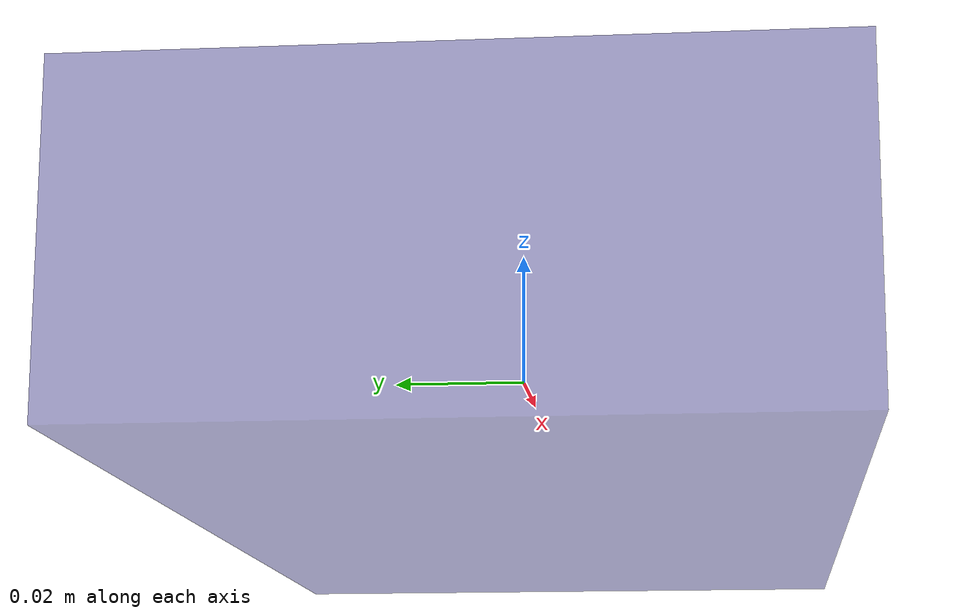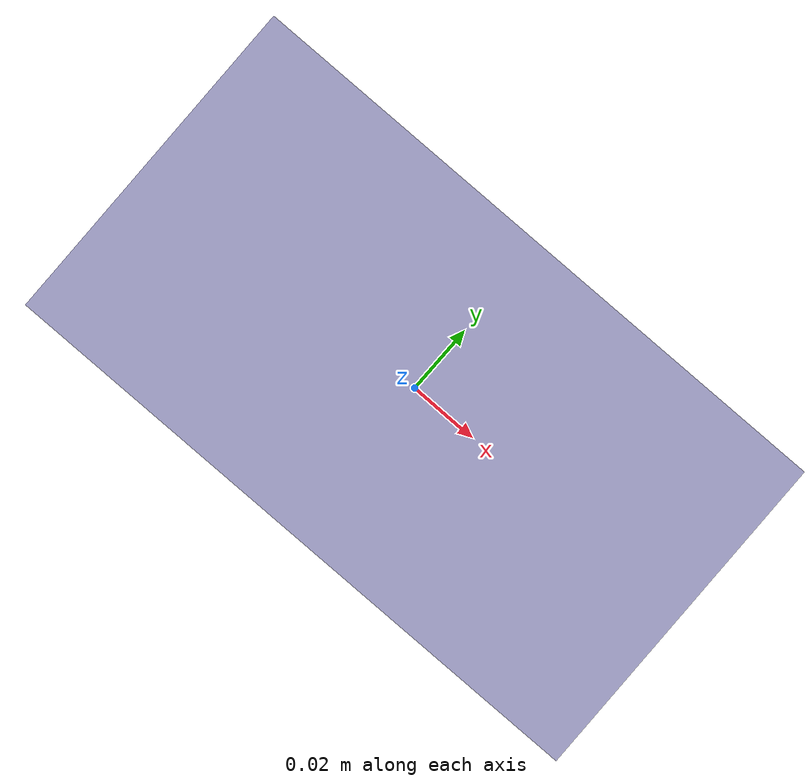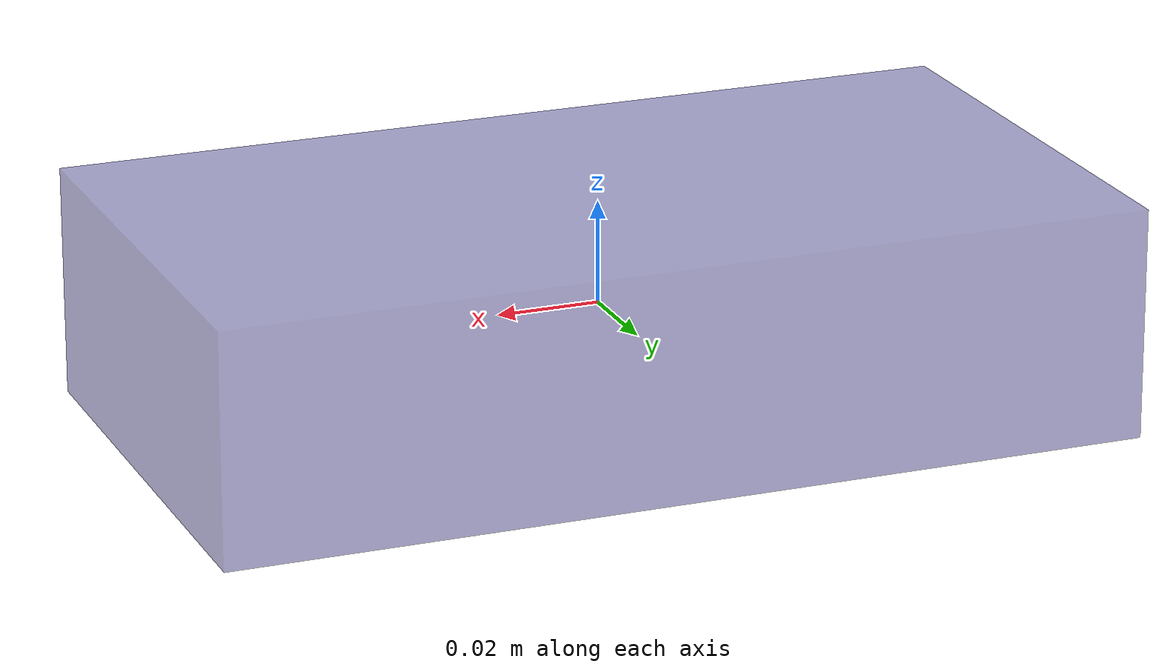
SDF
<sdf version="1.7">
  <model name="blue_berry_box_small_soft">
    <link name="base_link">
      <inertial>
        <mass>0.25</mass>
        <inertia>
          <ixx>2.505e-04</ixx>
          <ixy>0.000e+00</ixy>
          <ixz>0.000e+00</ixz>
          <iyy>7.172e-04</iyy>
          <iyz>0.000e+00</iyz>
          <izz>8.833e-04</izz>
        </inertia>
      </inertial>
      <visual name="blue_berry_box_small_soft_visual">
        <geometry>
          <box>
            <size>0.18 0.098 0.045</size>
          </box>
        </geometry>zzz
        <material>
          <diffuse>0.27 0.25 0.59 0.5</diffuse>
        </material>
      </visual>
      <collision name="body">
        <geometry>
          <box>
            <size>0.178 0.098 0.043</size>
          </box>
        </geometry>
        <drake:proximity_properties>
          <drake:mu_dynamic>0.5</drake:mu_dynamic>
          <drake:mu_static>0.5</drake:mu_static>
          <drake:mesh_resolution_hint>0.02</drake:mesh_resolution_hint>
          <drake:elastic_modulus>1e5</drake:elastic_modulus>
          <drake:hunt_crossley_dissipation>5.0</drake:hunt_crossley_dissipation>
          <drake:soft_hydroelastic/>
        </drake:proximity_properties>
      </collision>
    </link>
  </model>
</sdf>
